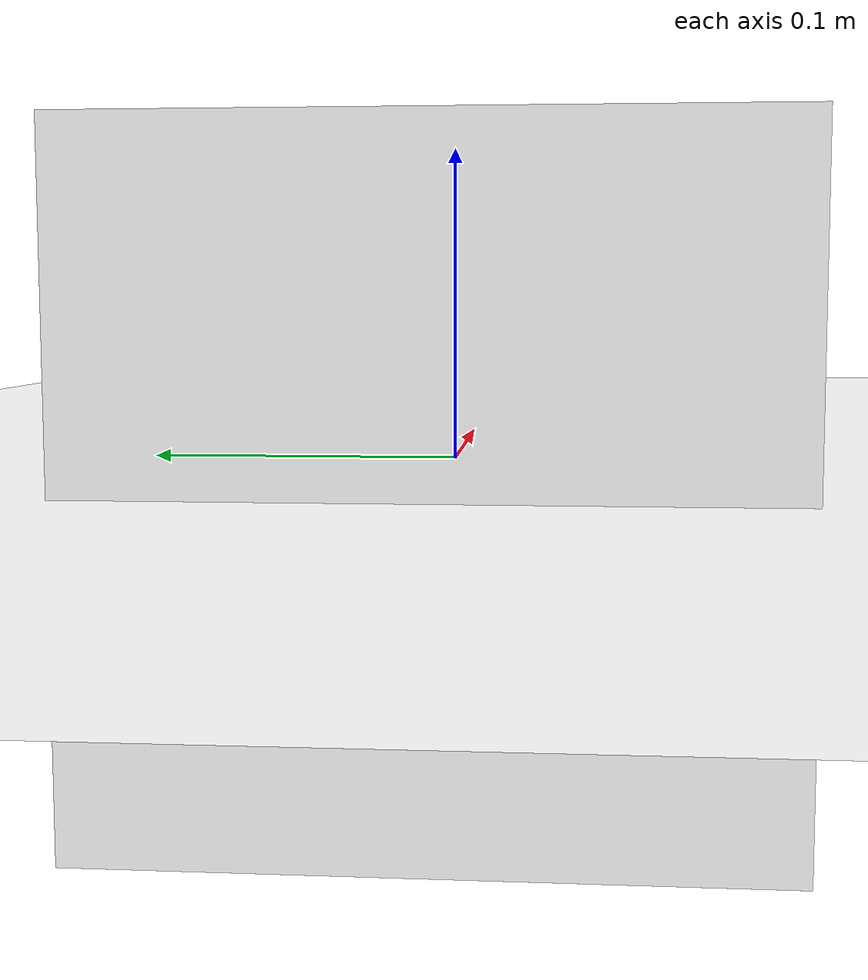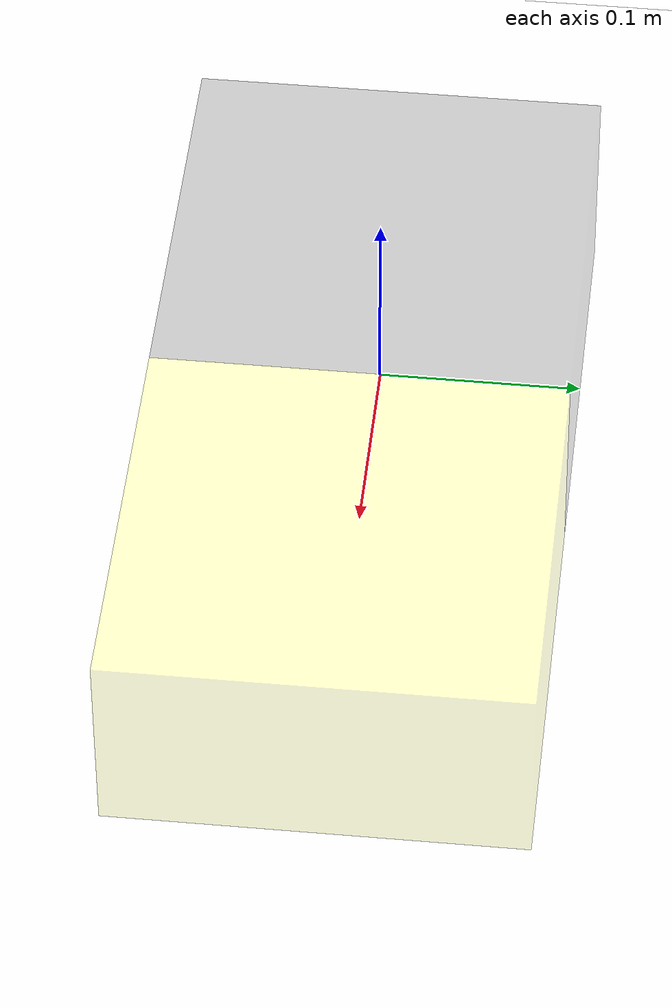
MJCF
<mujoco>
    <option gravity="0 0 -9.81" timestep="0.001"/>
    <compiler coordinate="local"/>
    <worldbody>
    <light diffuse="0.8 0.8 0.8" pos="0 0 3" dir="0 0 -1"/>
    <geom type="plane" size="5 5 0.1" rgba="255 255 255 0.6"/>
        <!-- First box -->
        <body name="box1" pos="0 0 0">
            <geom type="box" size="0.1 0.1 0.1" rgba = "0 0 0 0.2" /> <!-- Size of the first box -->
            <!-- Slide joint definition -->
            <joint name="slide_joint" type="slide" pos="0 0 0" axis="1 0 0" /> <!-- Slides along the X-axis -->
            <!-- Second box connected via the slide joint -->
            <body name="box2" pos="0.2 0 0"> <!-- Initial position is set to show the boxes are separated -->
                <geom type="box" size="0.1 0.1 0.1" rgba = "1 1 0 0.2"/> <!-- Size of the second box -->
            </body>
        </body>
    </worldbody>
    <actuator>
        <!-- Actuator to control the slide joint -->
        <motor name="slide_motor" joint="slide_joint" ctrlrange="-1 1" gear="0.1"/>
    </actuator>
    <asset>
        <material name="MatBox1" rgba="0.8 0.3 0.3 0.2"/>
        <material name="MatBox2" rgba="0.3 0.3 0.8 0.2"/>
    </asset>
</mujoco>
